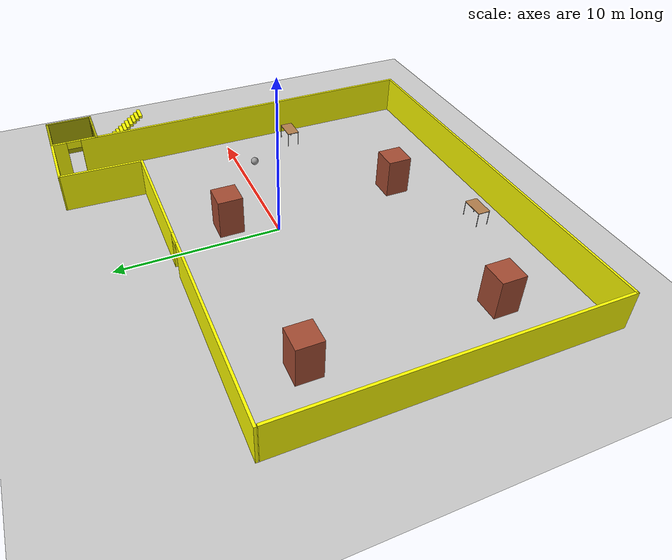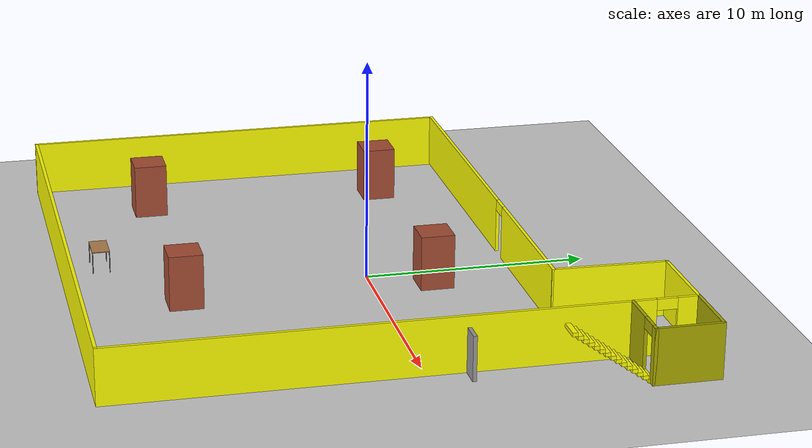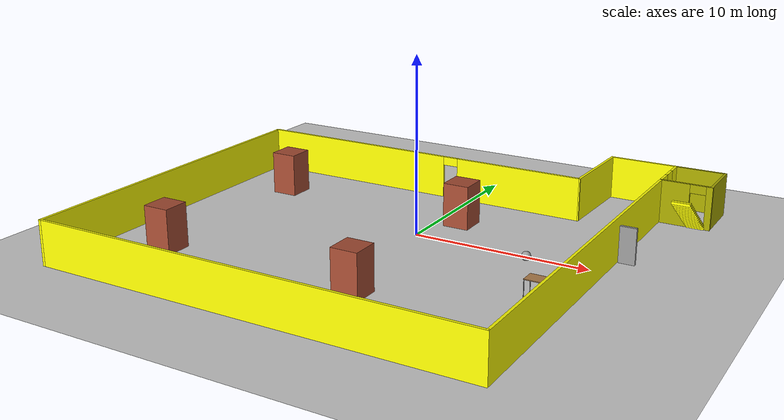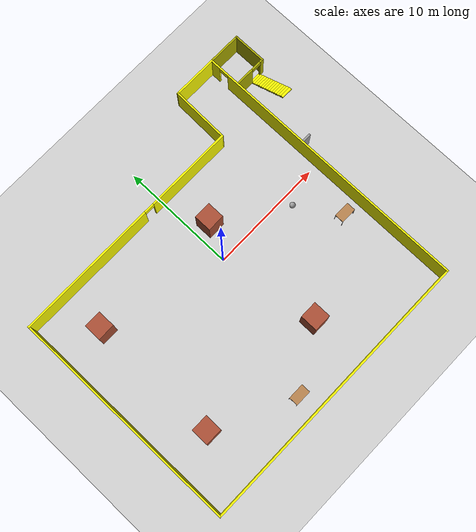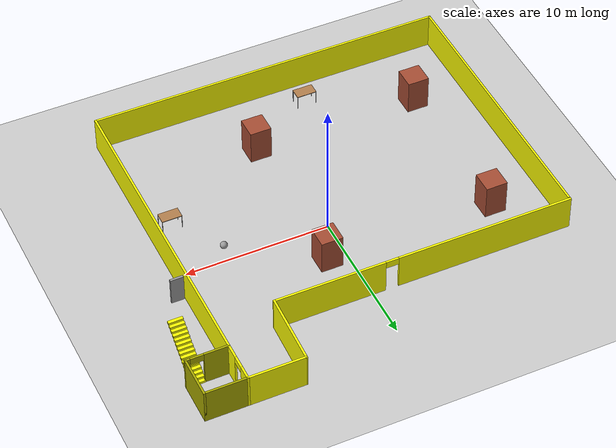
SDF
<sdf version="1.6">
 <world name="default">
  <plugin name="description" filename="libdescription.so"/>
  <light name="sun" type="directional">
   <pose>0 0 10 0 -0 0</pose>
   <diffuse>0.8 0.8 0.8 1</diffuse>
   <specular>0.1 0.1 0.1 1</specular>
   <attenuation>
    <range>1000</range>
    <constant>0.9</constant>
    <linear>0.01</linear>
    <quadratic>0.001</quadratic>
   </attenuation>
   <direction>-0.5 0.5 -1</direction>
  </light>
  <model name="ground_plane">
   <static>1</static>
   <link name="link">
    <collision name="collision">
     <geometry><plane><normal>0 0 1</normal><size>100 100</size></plane></geometry>
     <surface><friction><ode><mu>100</mu><mu2>50</mu2></ode></friction></surface>
    </collision>
    <visual name="visual">
     <cast_shadows>0</cast_shadows>
     <geometry><plane><normal>0 0 1</normal><size>100 100</size></plane></geometry>
     <material>
      <script><uri>file://media/materials/scripts/gazebo.material</uri><name>Gazebo/Grey</name></script>
     </material>
    </visual>
   </link>
  </model>
  <gravity>0 0 -9.8</gravity>
  <magnetic_field>6e-06 2.3e-05 -4.2e-05</magnetic_field>
  <atmosphere type="adiabatic"/>
  <physics name="default_physics" default="0" type="ode">
   <max_step_size>0.001</max_step_size>
   <real_time_factor>1</real_time_factor>
   <real_time_update_rate>1000</real_time_update_rate>
  </physics>
  <scene><ambient>0.4 0.4 0.4 1</ambient><background>0.7 0.7 0.7 1</background><shadows>1</shadows></scene>
  <spherical_coordinates>
   <surface_model>EARTH_WGS84</surface_model>
   <latitude_deg>0</latitude_deg>
   <longitude_deg>0</longitude_deg>
   <elevation>0</elevation>
   <heading_deg>0</heading_deg>
  </spherical_coordinates>
  <model name="basement_updated">
   <pose>-0.2396 -0.87146 0 0 -0 0</pose>
   <link name="Door_3">
    <collision name="Door_3_Collision">
     <geometry><box><size>0.9 0.17 2</size></box></geometry>
     <pose>0 0 1 0 -0 0</pose>
    </collision>
    <visual name="Door_3_Visual">
     <pose>0 0 1 0 -0 0</pose>
     <geometry><box><size>0.9 0.17 2</size></box></geometry>
     <material>
      <script><uri>file://media/materials/scripts/gazebo.material</uri><name>Gazebo/Grey</name></script>
     </material>
    </visual>
    <pose>11.5491 2.65287 0 0 -0 0</pose>
   </link>
   <link name="Stairs_0">
    <visual name="Stairs_0_Visual_0">
     <pose>13.1146 9.55196 0.083333 0 -0 0</pose>
     <geometry><box><size>1 0.233333 0.166667</size></box></geometry>
     <material>
      <script><uri>file://media/materials/scripts/gazebo.material</uri><name>Gazebo/Grey</name></script>
      <ambient>1 1 0 1</ambient>
     </material>
    </visual>
    <collision name="Stairs_0_Collision_0">
     <geometry><box><size>1 0.233333 0.166667</size></box></geometry>
     <pose>13.1146 9.55196 0.083333 0 -0 0</pose>
    </collision>
    <visual name="Stairs_0_Visual_1">
     <pose>13.1146 9.31863 0.25 0 -0 0</pose>
     <geometry><box><size>1 0.233333 0.166667</size></box></geometry>
     <material>
      <script><uri>file://media/materials/scripts/gazebo.material</uri><name>Gazebo/Grey</name></script>
      <ambient>1 1 0 1</ambient>
     </material>
    </visual>
    <collision name="Stairs_0_Collision_1">
     <geometry><box><size>1 0.233333 0.166667</size></box></geometry>
     <pose>13.1146 9.31863 0.25 0 -0 0</pose>
    </collision>
    <visual name="Stairs_0_Visual_2">
     <pose>13.1146 9.0853 0.416667 0 -0 0</pose>
     <geometry><box><size>1 0.233333 0.166667</size></box></geometry>
     <material>
      <script><uri>file://media/materials/scripts/gazebo.material</uri><name>Gazebo/Grey</name></script>
      <ambient>1 1 0 1</ambient>
     </material>
    </visual>
    <collision name="Stairs_0_Collision_2">
     <geometry><box><size>1 0.233333 0.166667</size></box></geometry>
     <pose>13.1146 9.0853 0.416667 0 -0 0</pose>
    </collision>
    <visual name="Stairs_0_Visual_3">
     <pose>13.1146 8.85196 0.583333 0 -0 0</pose>
     <geometry><box><size>1 0.233333 0.166667</size></box></geometry>
     <material>
      <script><uri>file://media/materials/scripts/gazebo.material</uri><name>Gazebo/Grey</name></script>
      <ambient>1 1 0 1</ambient>
     </material>
    </visual>
    <collision name="Stairs_0_Collision_3">
     <geometry><box><size>1 0.233333 0.166667</size></box></geometry>
     <pose>13.1146 8.85196 0.583333 0 -0 0</pose>
    </collision>
    <visual name="Stairs_0_Visual_4">
     <pose>13.1146 8.61863 0.75 0 -0 0</pose>
     <geometry><box><size>1 0.233333 0.166667</size></box></geometry>
     <material>
      <script><uri>file://media/materials/scripts/gazebo.material</uri><name>Gazebo/Grey</name></script>
      <ambient>1 1 0 1</ambient>
     </material>
    </visual>
    <collision name="Stairs_0_Collision_4">
     <geometry><box><size>1 0.233333 0.166667</size></box></geometry>
     <pose>13.1146 8.61863 0.75 0 -0 0</pose>
    </collision>
    <visual name="Stairs_0_Visual_5">
     <pose>13.1146 8.3853 0.916667 0 -0 0</pose>
     <geometry><box><size>1 0.233333 0.166667</size></box></geometry>
     <material>
      <script><uri>file://media/materials/scripts/gazebo.material</uri><name>Gazebo/Grey</name></script>
      <ambient>1 1 0 1</ambient>
     </material>
    </visual>
    <collision name="Stairs_0_Collision_5">
     <geometry><box><size>1 0.233333 0.166667</size></box></geometry>
     <pose>13.1146 8.3853 0.916667 0 -0 0</pose>
    </collision>
    <visual name="Stairs_0_Visual_6">
     <pose>13.1146 8.15196 1.08333 0 -0 0</pose>
     <geometry><box><size>1 0.233333 0.166667</size></box></geometry>
     <material>
      <script><uri>file://media/materials/scripts/gazebo.material</uri><name>Gazebo/Grey</name></script>
      <ambient>1 1 0 1</ambient>
     </material>
    </visual>
    <collision name="Stairs_0_Collision_6">
     <geometry><box><size>1 0.233333 0.166667</size></box></geometry>
     <pose>13.1146 8.15196 1.08333 0 -0 0</pose>
    </collision>
    <visual name="Stairs_0_Visual_7">
     <pose>13.1146 7.91863 1.25 0 -0 0</pose>
     <geometry><box><size>1 0.233333 0.166667</size></box></geometry>
     <material>
      <script><uri>file://media/materials/scripts/gazebo.material</uri><name>Gazebo/Grey</name></script>
      <ambient>1 1 0 1</ambient>
     </material>
    </visual>
    <collision name="Stairs_0_Collision_7">
     <geometry><box><size>1 0.233333 0.166667</size></box></geometry>
     <pose>13.1146 7.91863 1.25 0 -0 0</pose>
    </collision>
    <visual name="Stairs_0_Visual_8">
     <pose>13.1146 7.6853 1.41667 0 -0 0</pose>
     <geometry><box><size>1 0.233333 0.166667</size></box></geometry>
     <material>
      <script><uri>file://media/materials/scripts/gazebo.material</uri><name>Gazebo/Grey</name></script>
      <ambient>1 1 0 1</ambient>
     </material>
    </visual>
    <collision name="Stairs_0_Collision_8">
     <geometry><box><size>1 0.233333 0.166667</size></box></geometry>
     <pose>13.1146 7.6853 1.41667 0 -0 0</pose>
    </collision>
    <visual name="Stairs_0_Visual_9">
     <pose>13.1146 7.45196 1.58333 0 -0 0</pose>
     <geometry><box><size>1 0.233333 0.166667</size></box></geometry>
     <material>
      <script><uri>file://media/materials/scripts/gazebo.material</uri><name>Gazebo/Grey</name></script>
      <ambient>1 1 0 1</ambient>
     </material>
    </visual>
    <collision name="Stairs_0_Collision_9">
     <geometry><box><size>1 0.233333 0.166667</size></box></geometry>
     <pose>13.1146 7.45196 1.58333 0 -0 0</pose>
    </collision>
    <visual name="Stairs_0_Visual_10">
     <pose>13.1146 7.21863 1.75 0 -0 0</pose>
     <geometry><box><size>1 0.233333 0.166667</size></box></geometry>
     <material>
      <script><uri>file://media/materials/scripts/gazebo.material</uri><name>Gazebo/Grey</name></script>
      <ambient>1 1 0 1</ambient>
     </material>
    </visual>
    <collision name="Stairs_0_Collision_10">
     <geometry><box><size>1 0.233333 0.166667</size></box></geometry>
     <pose>13.1146 7.21863 1.75 0 -0 0</pose>
    </collision>
    <visual name="Stairs_0_Visual_11">
     <pose>13.1146 6.9853 1.91667 0 -0 0</pose>
     <geometry><box><size>1 0.233333 0.166667</size></box></geometry>
     <material>
      <script><uri>file://media/materials/scripts/gazebo.material</uri><name>Gazebo/Grey</name></script>
      <ambient>1 1 0 1</ambient>
     </material>
    </visual>
    <collision name="Stairs_0_Collision_11">
     <geometry><box><size>1 0.233333 0.166667</size></box></geometry>
     <pose>13.1146 6.9853 1.91667 0 -0 0</pose>
    </collision>
    <visual name="Stairs_0_Visual_12">
     <pose>13.1146 6.75196 2.08333 0 -0 0</pose>
     <geometry><box><size>1 0.233333 0.166667</size></box></geometry>
     <material>
      <script><uri>file://media/materials/scripts/gazebo.material</uri><name>Gazebo/Grey</name></script>
      <ambient>1 1 0 1</ambient>
     </material>
    </visual>
    <collision name="Stairs_0_Collision_12">
     <geometry><box><size>1 0.233333 0.166667</size></box></geometry>
     <pose>13.1146 6.75196 2.08333 0 -0 0</pose>
    </collision>
    <visual name="Stairs_0_Visual_13">
     <pose>13.1146 6.51863 2.25 0 -0 0</pose>
     <geometry><box><size>1 0.233333 0.166667</size></box></geometry>
     <material>
      <script><uri>file://media/materials/scripts/gazebo.material</uri><name>Gazebo/Grey</name></script>
      <ambient>1 1 0 1</ambient>
     </material>
    </visual>
    <collision name="Stairs_0_Collision_13">
     <geometry><box><size>1 0.233333 0.166667</size></box></geometry>
     <pose>13.1146 6.51863 2.25 0 -0 0</pose>
    </collision>
    <visual name="Stairs_0_Visual_14">
     <pose>13.1146 6.2853 2.41667 0 -0 0</pose>
     <geometry><box><size>1 0.233333 0.166667</size></box></geometry>
     <material>
      <script><uri>file://media/materials/scripts/gazebo.material</uri><name>Gazebo/Grey</name></script>
      <ambient>1 1 0 1</ambient>
     </material>
    </visual>
    <collision name="Stairs_0_Collision_14">
     <geometry><box><size>1 0.233333 0.166667</size></box></geometry>
     <pose>13.1146 6.2853 2.41667 0 -0 0</pose>
    </collision>
   </link>
   <link name="Wall_0">
    <collision name="Wall_0_Collision">
     <geometry><box><size>19.8118 0.15 2.5</size></box></geometry>
     <pose>0 0 1.25 0 -0 0</pose>
    </collision>
    <visual name="Wall_0_Visual">
     <pose>0 0 1.25 0 -0 0</pose>
     <geometry><box><size>19.8118 0.15 2.5</size></box></geometry>
     <material>
      <script><uri>file://media/materials/scripts/gazebo.material</uri><name>Gazebo/Grey</name></script>
      <ambient>1 1 0 1</ambient>
     </material>
    </visual>
    <pose>-13.85 -2.59522 0 0 0 -1.5708</pose>
   </link>
   <link name="Wall_13">
    <pose>-3.425 7.42389 0 0 -0 0</pose>
    <visual name="Wall_13_Visual_0">
     <pose>-4.32108 0 1.25 0 -0 0</pose>
     <geometry><box><size>12.3578 0.15 2.5</size></box></geometry>
     <material>
      <script><uri>file://media/materials/scripts/gazebo.material</uri><name>Gazebo/Grey</name></script>
      <ambient>1 1 0 1</ambient>
     </material>
    </visual>
    <collision name="Wall_13_Collision_0">
     <geometry><box><size>12.3578 0.15 2.5</size></box></geometry>
     <pose>-4.32108 0 1.25 0 -0 0</pose>
    </collision>
    <visual name="Wall_13_Visual_1">
     <pose>6.62892 0 1.25 0 -0 0</pose>
     <geometry><box><size>7.74215 0.15 2.5</size></box></geometry>
     <material>
      <script><uri>file://media/materials/scripts/gazebo.material</uri><name>Gazebo/Grey</name></script>
      <ambient>1 1 0 1</ambient>
     </material>
    </visual>
    <collision name="Wall_13_Collision_1">
     <geometry><box><size>7.74215 0.15 2.5</size></box></geometry>
     <pose>6.62892 0 1.25 0 -0 0</pose>
    </collision>
    <visual name="Wall_13_Visual_2">
     <pose>2.30785 0 2.25 0 -0 0</pose>
     <geometry><box><size>0.9 0.15 0.5</size></box></geometry>
     <material>
      <script><uri>file://media/materials/scripts/gazebo.material</uri><name>Gazebo/Grey</name></script>
      <ambient>1 1 0 1</ambient>
     </material>
    </visual>
    <collision name="Wall_13_Collision_2">
     <geometry><box><size>0.9 0.15 0.5</size></box></geometry>
     <pose>2.30785 0 2.25 0 -0 0</pose>
    </collision>
   </link>
   <link name="Wall_17">
    <pose>11 -0.001107 0 0 -0 1.5708</pose>
    <visual name="Wall_17_Visual_0">
     <pose>-0.949636 0 1.25 0 -0 0</pose>
     <geometry><box><size>23.1007 0.15 2.5</size></box></geometry>
     <material>
      <script><uri>file://media/materials/scripts/gazebo.material</uri><name>Gazebo/Grey</name></script>
      <ambient>1 1 0 1</ambient>
     </material>
    </visual>
    <collision name="Wall_17_Collision_0">
     <geometry><box><size>23.1007 0.15 2.5</size></box></geometry>
     <pose>-0.949636 0 1.25 0 -0 0</pose>
    </collision>
    <visual name="Wall_17_Visual_1">
     <pose>12.0004 0 1.25 0 -0 0</pose>
     <geometry><box><size>0.999273 0.15 2.5</size></box></geometry>
     <material>
      <script><uri>file://media/materials/scripts/gazebo.material</uri><name>Gazebo/Grey</name></script>
      <ambient>1 1 0 1</ambient>
     </material>
    </visual>
    <collision name="Wall_17_Collision_1">
     <geometry><box><size>0.999273 0.15 2.5</size></box></geometry>
     <pose>12.0004 0 1.25 0 -0 0</pose>
    </collision>
    <visual name="Wall_17_Visual_2">
     <pose>11.0507 0 2.25 0 -0 0</pose>
     <geometry><box><size>0.9 0.15 0.5</size></box></geometry>
     <material>
      <script><uri>file://media/materials/scripts/gazebo.material</uri><name>Gazebo/Grey</name></script>
      <ambient>1 1 0 1</ambient>
     </material>
    </visual>
    <collision name="Wall_17_Collision_2">
     <geometry><box><size>0.9 0.15 0.5</size></box></geometry>
     <pose>11.0507 0 2.25 0 -0 0</pose>
    </collision>
   </link>
   <link name="Wall_20">
    <collision name="Wall_20_Collision">
     <geometry><box><size>4 0.15 2.5</size></box></geometry>
     <pose>0 0 1.25 0 -0 0</pose>
    </collision>
    <visual name="Wall_20_Visual">
     <pose>0 0 1.25 0 -0 0</pose>
     <geometry><box><size>4 0.15 2.5</size></box></geometry>
     <material>
      <script><uri>file://media/materials/scripts/gazebo.material</uri><name>Gazebo/Grey</name></script>
      <ambient>1 1 0 1</ambient>
     </material>
    </visual>
    <pose>9.075 12.4239 0 0 -0 3.14159</pose>
   </link>
   <link name="Wall_24">
    <collision name="Wall_24_Collision">
     <geometry><box><size>5.15225 0.15 2.5</size></box></geometry>
     <pose>0 0 1.25 0 -0 0</pose>
    </collision>
    <visual name="Wall_24_Visual">
     <pose>0 0 1.25 0 -0 0</pose>
     <geometry><box><size>5.15225 0.15 2.5</size></box></geometry>
     <material>
      <script><uri>file://media/materials/scripts/gazebo.material</uri><name>Gazebo/Grey</name></script>
      <ambient>1 1 0 1</ambient>
     </material>
    </visual>
    <pose>7.075 9.92389 0 0 -0 1.5408</pose>
   </link>
   <link name="Wall_26">
    <collision name="Wall_26_Collision">
     <geometry><box><size>1.51 1.5 2.5</size></box></geometry>
     <pose>0 0 1.25 0 -0 0</pose>
    </collision>
    <visual name="Wall_26_Visual">
     <pose>0 0 1.25 0 -0 0</pose>
     <geometry><box><size>1.51 1.5 2.5</size></box></geometry>
     <material>
      <script><uri>file://media/materials/scripts/gazebo.material</uri><name>Gazebo/Bricks</name></script>
      <ambient>1 1 1 1</ambient>
     </material>
    </visual>
    <pose>-10.1524 3.68806 0 0 -0 1.5708</pose>
   </link>
   <link name="Wall_28">
    <collision name="Wall_28_Collision">
     <geometry><box><size>1.51 1.5 2.5</size></box></geometry>
     <pose>0 0 1.25 0 -0 0</pose>
    </collision>
    <visual name="Wall_28_Visual">
     <pose>0 0 1.25 0 -0 0</pose>
     <geometry><box><size>1.51 1.5 2.5</size></box></geometry>
     <material>
      <script><uri>file://media/materials/scripts/gazebo.material</uri><name>Gazebo/Bricks</name></script>
      <ambient>1 1 1 1</ambient>
     </material>
    </visual>
    <pose>1.58088 3.61659 0 0 0 -1.5708</pose>
   </link>
   <link name="Wall_30">
    <collision name="Wall_30_Collision">
     <geometry><box><size>1.51 1.5 2.5</size></box></geometry>
     <pose>0 0 1.25 0 -0 0</pose>
    </collision>
    <visual name="Wall_30_Visual">
     <pose>0 0 1.25 0 -0 0</pose>
     <geometry><box><size>1.51 1.5 2.5</size></box></geometry>
     <material>
      <script><uri>file://media/materials/scripts/gazebo.material</uri><name>Gazebo/Bricks</name></script>
      <ambient>1 1 1 1</ambient>
     </material>
    </visual>
    <pose>-10.1281 -7.46052 0 0 0 -1.5708</pose>
   </link>
   <link name="Wall_33">
    <collision name="Wall_33_Collision">
     <geometry><box><size>1.51 1.5 2.5</size></box></geometry>
     <pose>0 0 1.25 0 -0 0</pose>
    </collision>
    <visual name="Wall_33_Visual">
     <pose>0 0 1.25 0 -0 0</pose>
     <geometry><box><size>1.51 1.5 2.5</size></box></geometry>
     <material>
      <script><uri>file://media/materials/scripts/gazebo.material</uri><name>Gazebo/Bricks</name></script>
      <ambient>1 1 1 1</ambient>
     </material>
    </visual>
    <pose>1.5253 -7.5316 0 0 -0 1.5708</pose>
   </link>
   <link name="Wall_35">
    <collision name="Wall_35_Collision">
     <geometry><box><size>3 0.15 2.5</size></box></geometry>
     <pose>0 0 1.25 0 -0 0</pose>
    </collision>
    <visual name="Wall_35_Visual">
     <pose>0 0 1.25 0 -0 0</pose>
     <geometry><box><size>3 0.15 2.5</size></box></geometry>
     <material>
      <script><uri>file://media/materials/scripts/gazebo.material</uri><name>Gazebo/Grey</name></script>
      <ambient>0.666667 0.666667 0 1</ambient>
     </material>
    </visual>
    <pose>12.425 12.4239 0 0 -0 0</pose>
   </link>
   <link name="Wall_37">
    <collision name="Wall_37_Collision">
     <geometry><box><size>3 0.15 2.5</size></box></geometry>
     <pose>0 0 1.25 0 -0 0</pose>
    </collision>
    <visual name="Wall_37_Visual">
     <pose>0 0 1.25 0 -0 0</pose>
     <geometry><box><size>3 0.15 2.5</size></box></geometry>
     <material>
      <script><uri>file://media/materials/scripts/gazebo.material</uri><name>Gazebo/Grey</name></script>
      <ambient>0.666667 0.666667 0 1</ambient>
     </material>
    </visual>
    <pose>13.85 10.9989 0 0 0 -1.5708</pose>
   </link>
   <link name="Wall_39">
    <pose>12.425 9.57389 0 0 -0 3.14159</pose>
    <visual name="Wall_39_Visual_0">
     <pose>-1.31981 0 1.25 0 -0 0</pose>
     <geometry><box><size>0.360381 0.15 2.5</size></box></geometry>
     <material>
      <script><uri>file://media/materials/scripts/gazebo.material</uri><name>Gazebo/Grey</name></script>
      <ambient>0.666667 0.666667 0 1</ambient>
     </material>
    </visual>
    <collision name="Wall_39_Collision_0">
     <geometry><box><size>0.360381 0.15 2.5</size></box></geometry>
     <pose>-1.31981 0 1.25 0 -0 0</pose>
    </collision>
    <visual name="Wall_39_Visual_1">
     <pose>0.630191 0 1.25 0 -0 0</pose>
     <geometry><box><size>1.73962 0.15 2.5</size></box></geometry>
     <material>
      <script><uri>file://media/materials/scripts/gazebo.material</uri><name>Gazebo/Grey</name></script>
      <ambient>0.666667 0.666667 0 1</ambient>
     </material>
    </visual>
    <collision name="Wall_39_Collision_1">
     <geometry><box><size>1.73962 0.15 2.5</size></box></geometry>
     <pose>0.630191 0 1.25 0 -0 0</pose>
    </collision>
    <visual name="Wall_39_Visual_2">
     <pose>-0.689619 0 2.25 0 -0 0</pose>
     <geometry><box><size>0.9 0.15 0.5</size></box></geometry>
     <material>
      <script><uri>file://media/materials/scripts/gazebo.material</uri><name>Gazebo/Grey</name></script>
      <ambient>0.666667 0.666667 0 1</ambient>
     </material>
    </visual>
    <collision name="Wall_39_Collision_2">
     <geometry><box><size>0.9 0.15 0.5</size></box></geometry>
     <pose>-0.689619 0 2.25 0 -0 0</pose>
    </collision>
   </link>
   <link name="Wall_8">
    <collision name="Wall_8_Collision">
     <geometry><box><size>25 0.15 2.5</size></box></geometry>
     <pose>0 0 1.25 0 -0 0</pose>
    </collision>
    <visual name="Wall_8_Visual">
     <pose>0 0 1.25 0 -0 0</pose>
     <geometry><box><size>25 0.15 2.5</size></box></geometry>
     <material>
      <script><uri>file://media/materials/scripts/gazebo.material</uri><name>Gazebo/Grey</name></script>
      <ambient>1 1 0 1</ambient>
     </material>
    </visual>
    <pose>-1.425 -12.4261 0 0 -0 0</pose>
   </link>
   <static>1</static>
  </model>
  <model name="table">
   <static>0</static>
   <link name="link">
    <collision name="surface">
     <pose>0 0 1 0 -0 0</pose>
     <geometry><box><size>1.5 0.8 0.03</size></box></geometry>
     <surface><friction><ode><mu>0.6</mu><mu2>0.6</mu2></ode></friction></surface>
    </collision>
    <visual name="visual1">
     <pose>0 0 1 0 -0 0</pose>
     <geometry><box><size>1.4 0.8 0.04</size></box></geometry>
     <material>
      <script><uri>file://media/materials/scripts/gazebo.material</uri><name>Gazebo/Wood</name></script>
     </material>
    </visual>
    <collision name="front_left_leg">
     <pose>0.68 0.38 0.5 0 -0 0</pose>
     <geometry><cylinder><radius>0.02</radius><length>1</length></cylinder></geometry>
    </collision>
    <visual name="front_left_leg">
     <pose>0.68 0.38 0.5 0 -0 0</pose>
     <geometry><cylinder><radius>0.02</radius><length>1</length></cylinder></geometry>
     <material>
      <script><uri>file://media/materials/scripts/gazebo.material</uri><name>Gazebo/Grey</name></script>
     </material>
    </visual>
    <collision name="front_right_leg">
     <pose>0.68 -0.38 0.5 0 -0 0</pose>
     <geometry><cylinder><radius>0.02</radius><length>1</length></cylinder></geometry>
    </collision>
    <visual name="front_right_leg">
     <pose>0.68 -0.38 0.5 0 -0 0</pose>
     <geometry><cylinder><radius>0.02</radius><length>1</length></cylinder></geometry>
     <material>
      <script><uri>file://media/materials/scripts/gazebo.material</uri><name>Gazebo/Grey</name></script>
     </material>
    </visual>
    <collision name="back_right_leg">
     <pose>-0.68 -0.38 0.5 0 -0 0</pose>
     <geometry><cylinder><radius>0.02</radius><length>1</length></cylinder></geometry>
    </collision>
    <visual name="back_right_leg">
     <pose>-0.68 -0.38 0.5 0 -0 0</pose>
     <geometry><cylinder><radius>0.02</radius><length>1</length></cylinder></geometry>
     <material>
      <script><uri>file://media/materials/scripts/gazebo.material</uri><name>Gazebo/Grey</name></script>
     </material>
    </visual>
    <collision name="back_left_leg">
     <pose>-0.68 0.38 0.5 0 -0 0</pose>
     <geometry><cylinder><radius>0.02</radius><length>1</length></cylinder></geometry>
    </collision>
    <visual name="back_left_leg">
     <pose>-0.68 0.38 0.5 0 -0 0</pose>
     <geometry><cylinder><radius>0.02</radius><length>1</length></cylinder></geometry>
     <material>
      <script><uri>file://media/materials/scripts/gazebo.material</uri><name>Gazebo/Grey</name></script>
     </material>
    </visual>
    <inertial>
     <inertia><ixx>1</ixx><ixy>0</ixy><ixz>0</ixz><iyy>1</iyy><iyz>0</iyz><izz>1</izz></inertia>
     <mass>1</mass>
    </inertial>
   </link>
   <pose>9.21076 -4.44048 -1e-06 0 1e-06 0</pose>
  </model>
  <model name="table_0">
   <static>0</static>
   <link name="link">
    <collision name="surface">
     <pose>0 0 1 0 -0 0</pose>
     <geometry><box><size>1.5 0.8 0.03</size></box></geometry>
     <surface><friction><ode><mu>0.6</mu><mu2>0.6</mu2></ode></friction></surface>
    </collision>
    <visual name="visual1">
     <pose>0 0 1 0 -0 0</pose>
     <geometry><box><size>1.4 0.8 0.04</size></box></geometry>
     <material>
      <script><uri>file://media/materials/scripts/gazebo.material</uri><name>Gazebo/Wood</name></script>
     </material>
    </visual>
    <collision name="front_left_leg">
     <pose>0.68 0.38 0.5 0 -0 0</pose>
     <geometry><cylinder><radius>0.02</radius><length>1</length></cylinder></geometry>
    </collision>
    <visual name="front_left_leg">
     <pose>0.68 0.38 0.5 0 -0 0</pose>
     <geometry><cylinder><radius>0.02</radius><length>1</length></cylinder></geometry>
     <material>
      <script><uri>file://media/materials/scripts/gazebo.material</uri><name>Gazebo/Grey</name></script>
     </material>
    </visual>
    <collision name="front_right_leg">
     <pose>0.68 -0.38 0.5 0 -0 0</pose>
     <geometry><cylinder><radius>0.02</radius><length>1</length></cylinder></geometry>
    </collision>
    <visual name="front_right_leg">
     <pose>0.68 -0.38 0.5 0 -0 0</pose>
     <geometry><cylinder><radius>0.02</radius><length>1</length></cylinder></geometry>
     <material>
      <script><uri>file://media/materials/scripts/gazebo.material</uri><name>Gazebo/Grey</name></script>
     </material>
    </visual>
    <collision name="back_right_leg">
     <pose>-0.68 -0.38 0.5 0 -0 0</pose>
     <geometry><cylinder><radius>0.02</radius><length>1</length></cylinder></geometry>
    </collision>
    <visual name="back_right_leg">
     <pose>-0.68 -0.38 0.5 0 -0 0</pose>
     <geometry><cylinder><radius>0.02</radius><length>1</length></cylinder></geometry>
     <material>
      <script><uri>file://media/materials/scripts/gazebo.material</uri><name>Gazebo/Grey</name></script>
     </material>
    </visual>
    <collision name="back_left_leg">
     <pose>-0.68 0.38 0.5 0 -0 0</pose>
     <geometry><cylinder><radius>0.02</radius><length>1</length></cylinder></geometry>
    </collision>
    <visual name="back_left_leg">
     <pose>-0.68 0.38 0.5 0 -0 0</pose>
     <geometry><cylinder><radius>0.02</radius><length>1</length></cylinder></geometry>
     <material>
      <script><uri>file://media/materials/scripts/gazebo.material</uri><name>Gazebo/Grey</name></script>
     </material>
    </visual>
    <inertial>
     <inertia><ixx>1</ixx><ixy>0</ixy><ixz>0</ixz><iyy>1</iyy><iyz>0</iyz><izz>1</izz></inertia>
     <mass>1</mass>
    </inertial>
   </link>
   <pose>-3.67837 -11.5144 -1e-06 0 1e-06 0</pose>
  </model>
  <model name="basement_world">
   <link name="link">
    <inertial>
     <mass>1</mass>
     <inertia><ixx>0.1</ixx><ixy>0</ixy><ixz>0</ixz><iyy>0.1</iyy><iyz>0</iyz><izz>0.1</izz></inertia>
    </inertial>
    <visual name="visual">
     <geometry><sphere><radius>0.25</radius></sphere></geometry>
     <material>
      <script><name>Gazebo/Grey</name><uri>file://media/materials/scripts/gazebo.material</uri></script>
      <ambient>1 1 1 1</ambient>
      <diffuse>1 1 1 1</diffuse>
      <specular>1 1 1 1</specular>
      <emissive>1 1 1 1</emissive>
      <shader type="vertex"><normal_map>__default__</normal_map></shader>
     </material>
    </visual>
    <collision name="collision">
     <geometry><sphere><radius>0.25</radius></sphere></geometry>
     <surface>
      <friction>
       <ode><mu>1</mu><mu2>1</mu2><fdir1>0 0 0</fdir1><slip1>0</slip1><slip2>0</slip2></ode>
       <torsional>
        <coefficient>1</coefficient>
        <patch_radius>0</patch_radius>
        <surface_radius>0</surface_radius>
        <use_patch_radius>1</use_patch_radius>
        <ode><slip>0</slip></ode>
       </torsional>
      </friction>
      <bounce><restitution_coefficient>0</restitution_coefficient><threshold>1e+06</threshold></bounce>
      <contact>
       <collide_without_contact>0</collide_without_contact>
       <collide_without_contact_bitmask>1</collide_without_contact_bitmask>
       <collide_bitmask>1</collide_bitmask>
       <ode>
        <soft_cfm>0</soft_cfm>
        <soft_erp>0.2</soft_erp>
        <kp>1e+13</kp>
        <kd>1</kd>
        <max_vel>0.01</max_vel>
        <min_depth>0</min_depth>
       </ode>
       <bullet>
        <split_impulse>1</split_impulse>
        <split_impulse_penetration_threshold>-0.01</split_impulse_penetration_threshold>
        <soft_cfm>0</soft_cfm>
        <soft_erp>0.2</soft_erp>
        <kp>1e+13</kp>
        <kd>1</kd>
       </bullet>
      </contact>
     </surface>
    </collision>
   </link>
   <static>0</static>
   <pose>6.93749 -0.950388 0.5 0 -0 0</pose>
  </model>
 </world>
</sdf>
